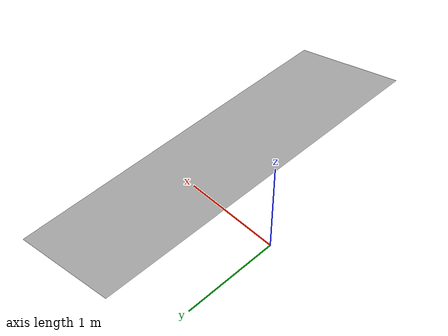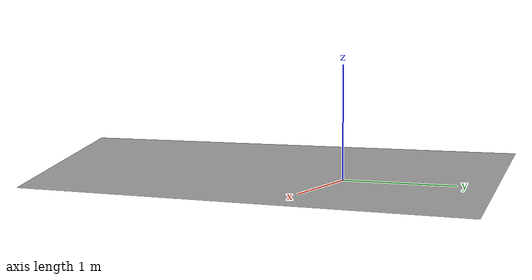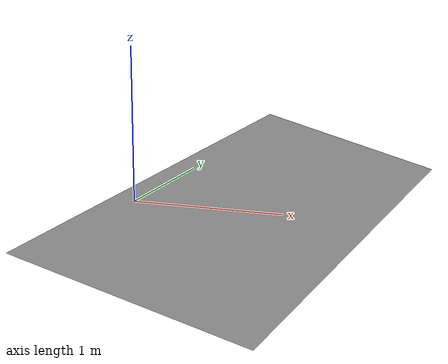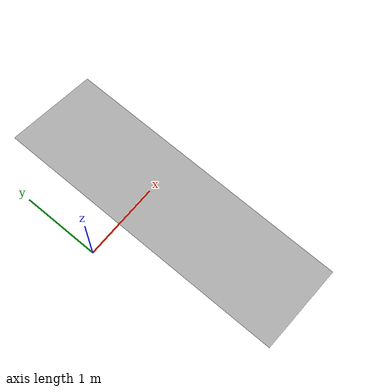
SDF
<?xml version="1.0" ?>
<sdf version="1.5">
  <model name="Ramp15Deg">
        <static>true</static>
    <link name="link">
    <gravity>0</gravity>
      <collision name="collision">
        <geometry>
          <mesh>
            <scale>1 1 1</scale>
            <uri>model://ramp_15/meshes/ramp15.dae</uri>
          </mesh>
        </geometry>
      </collision>
      <visual name="visual">
        <geometry>
          <mesh>
            <scale>1 1 1</scale>
            <uri>model://ramp_15/meshes/ramp15.dae</uri>
          </mesh>
        </geometry>
      </visual>
    </link>
  </model>
</sdf>
